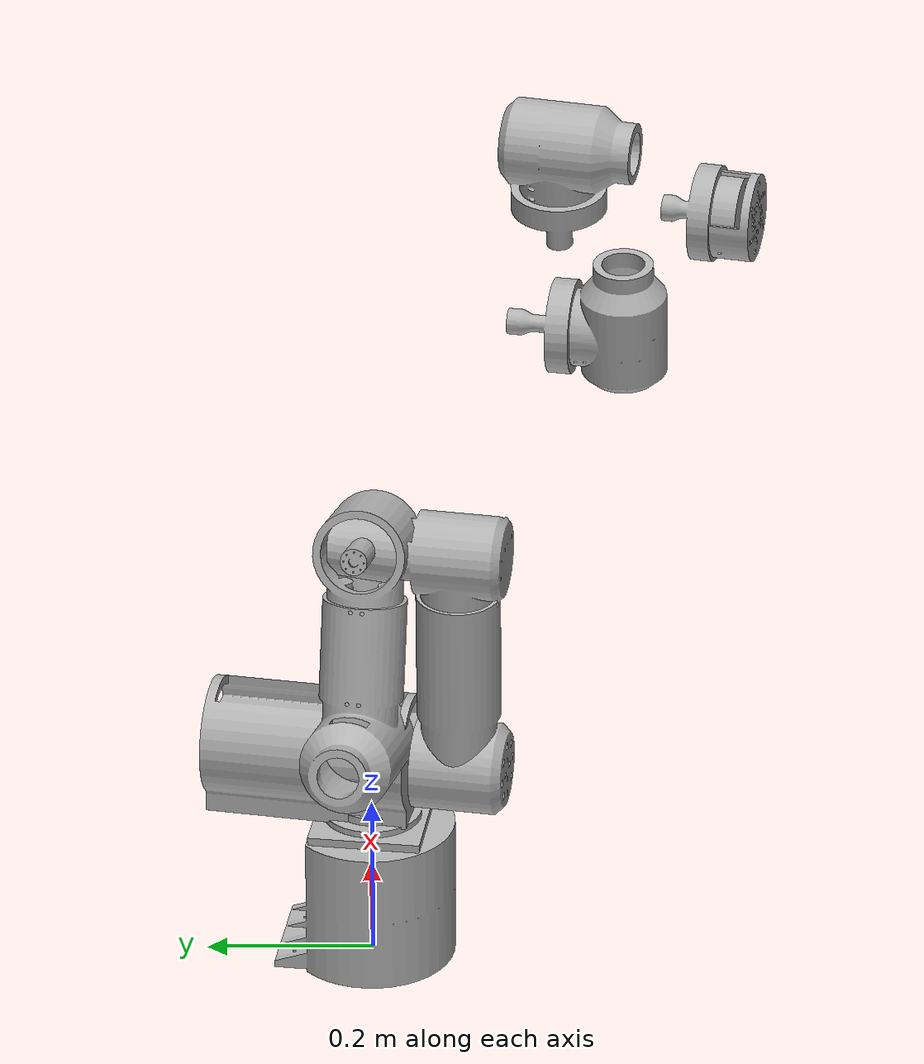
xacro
<?xml version="1.0"?>
<robot xmlns:xacro="http://www.ros.org/wiki/xacro" name="handy_description">

  <!-- Arguments -->
  <xacro:arg name="initial_positions_file" default="$(find handy_config)/config/initial_positions.yaml"/>
  <xacro:arg name="use_sim" default="false"/>

  <!-- Store arg as property for use in macro -->
  <xacro:property name="use_sim_prop" value="$(arg use_sim)"/>

  <xacro:include filename="$(find handy_description)/urdf/handy_description.urdf"/>
  <xacro:include filename="$(find handy_config)/config/handy_description.gazebo.xacro"/>
  <xacro:include filename="$(find handy_config)/config/handy_description.ros2_control.xacro"/>

  <!-- Call macro with use_sim property -->
  <xacro:handy_description_ros2_control
    name="handy_ros2_control"
    use_sim="${use_sim_prop}"
    initial_positions_file="$(arg initial_positions_file)"/>

</robot>

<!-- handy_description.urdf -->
<robot
  name="handy_description">
  <link
    name="base_link">
    <inertial>
      <origin
        xyz="-2.17400550704263E-05 0.0804155851410019 0.0167771821086932"
        rpy="0 0 0" />
      <mass
        value="5.20579669773012" />
      <inertia
        ixx="0.0745298638298292"
        ixy="2.35902206932597E-07"
        ixz="-1.71772773874938E-05"
        iyy="0.121254442926251"
        iyz="-0.000702969799281514"
        izz="0.0908582339067126" />
    </inertial>
    <visual>
      <origin
        xyz="0 0 0"
        rpy="0 0 0" />
      <geometry>
        <mesh
          filename="file://$(find handy_description)/meshes/base_link.STL" />
      </geometry>
      <material
        name="">
        <color
          rgba="0.698039215686274 0.698039215686274 0.698039215686274 1" />
      </material>
    </visual>
    <collision>
      <origin
        xyz="0 0 0"
        rpy="0 0 0" />
      <geometry>
        <mesh
          filename="file://$(find handy_description)/meshes/base_link.STL" />
      </geometry>
    </collision>
  </link>
  <link
    name="Link1">
    <inertial>
      <origin
        xyz="-0.0505963772912258 0.0807845229259251 0.000239884360427188"
        rpy="0 0 0" />
      <mass
        value="1.84719084699337" />
      <inertia
        ixx="0.00589331492713367"
        ixy="-0.000434913621296606"
        ixz="9.41395649699435E-06"
        iyy="0.0165212871966622"
        iyz="-3.68582776875864E-05"
        izz="0.0170282435103473" />
    </inertial>
    <visual>
      <origin
        xyz="0 0 0"
        rpy="0 0 0" />
      <geometry>
        <mesh
          filename="file://$(find handy_description)/meshes/Link1.STL" />
      </geometry>
      <material
        name="">
        <color
          rgba="0.698039215686274 0.698039215686274 0.698039215686274 1" />
      </material>
    </visual>
    <collision>
      <origin
        xyz="0 0 0"
        rpy="0 0 0" />
      <geometry>
        <mesh
          filename="file://$(find handy_description)/meshes/Link1.STL" />
      </geometry>
    </collision>
  </link>
  <joint
    name="joint1"
    type="continuous">
    <origin
      xyz="0 0 0.16499999999999"
      rpy="1.5707963267949 0 -1.78820384774425" />
    <parent
      link="base_link" />
    <child
      link="Link1" />
    <axis
      xyz="0 1 0" />
  </joint>
  <link
    name="Link2">
    <inertial>
      <origin
        xyz="0.0872810786514221 0.171831443377257 0.000442592450654812"
        rpy="0 0 0" />
      <mass
        value="1.79378971577605" />
      <inertia
        ixx="0.0286366097356286"
        ixy="0.00434268252501847"
        ixz="5.82082670946274E-06"
        iyy="0.00630835073077821"
        iyz="-4.22812908192919E-05"
        izz="0.031806258387788" />
    </inertial>
    <visual>
      <origin
        xyz="0 0 0"
        rpy="0 0 0" />
      <geometry>
        <mesh
          filename="file://$(find handy_description)/meshes/Link2.STL" />
      </geometry>
      <material
        name="">
        <color
          rgba="0.698039215686274 0.698039215686274 0.698039215686274 1" />
      </material>
    </visual>
    <collision>
      <origin
        xyz="0 0 0"
        rpy="0 0 0" />
      <geometry>
        <mesh
          filename="file://$(find handy_description)/meshes/Link2.STL" />
      </geometry>
    </collision>
  </link>
  <joint
    name="joint2"
    type="continuous">
    <origin
      xyz="0 0.0980000000000102 0"
      rpy="0.0331729718675605 0 0" />
    <parent
      link="Link1" />
    <child
      link="Link2" />
    <axis
      xyz="1 0 0" />
  </joint>
  <link
    name="Link3">
    <inertial>
      <origin
        xyz="-3.17005538200688E-05 -0.145907433466096 -0.0124227488510887"
        rpy="0 0 0" />
      <mass
        value="1.67831155597823" />
      <inertia
        ixx="0.0287779073274115"
        ixy="1.21179691208291E-07"
        ixz="1.28013844381651E-08"
        iyy="0.00494996442330398"
        iyz="0.00209715919164777"
        izz="0.0272241658004667" />
    </inertial>
    <visual>
      <origin
        xyz="0 0 0"
        rpy="0 0 0" />
      <geometry>
        <mesh
          filename="file://$(find handy_description)/meshes/Link3.STL" />
      </geometry>
      <material
        name="">
        <color
          rgba="0.698039215686274 0.698039215686274 0.698039215686274 1" />
      </material>
    </visual>
    <collision>
      <origin
        xyz="0 0 0"
        rpy="0 0 0" />
      <geometry>
        <mesh
          filename="file://$(find handy_description)/meshes/Link3.STL" />
      </geometry>
    </collision>
  </link>
  <joint
    name="joint3"
    type="continuous">
    <origin
      xyz="0 0.29155 0.000575582702538871"
      rpy="1.5707963267949 -1.32183280290932 1.5707963267949" />
    <parent
      link="Link2" />
    <child
      link="Link3" />
    <axis
      xyz="0 0 1" />
  </joint>
  <link
    name="Link4">
    <inertial>
      <origin
        xyz="9.14813616526011E-09 0.0807632232499863 -0.00464807251136501"
        rpy="0 0 0" />
      <mass
        value="0.788294501444391" />
      <inertia
        ixx="0.00337863003704717"
        ixy="-1.49147045606338E-09"
        ixz="-1.97176665782316E-09"
        iyy="0.00181746118095437"
        iyz="5.59839347246388E-05"
        izz="0.00294855360229455" />
    </inertial>
    <visual>
      <origin
        xyz="0 0 0"
        rpy="0 0 0" />
      <geometry>
        <mesh
          filename="file://$(find handy_description)/meshes/Link4.STL" />
      </geometry>
      <material
        name="">
        <color
          rgba="0.698039215686274 0.698039215686274 0.698039215686274 1" />
      </material>
    </visual>
    <collision>
      <origin
        xyz="0 0 0"
        rpy="0 0 0" />
      <geometry>
        <mesh
          filename="file://$(find handy_description)/meshes/Link4.STL" />
      </geometry>
    </collision>
  </link>
  <joint
    name="joint4"
    type="continuous">
    <origin
      xyz="0 -0.283 0.0937268862500288"
      rpy="1.5707963267949 0 -2.80898508991109" />
    <parent
      link="Link3" />
    <child
      link="Link4" />
    <axis
      xyz="0 1 0" />
  </joint>
  <link
    name="Link5">
    <inertial>
      <origin
        xyz="1.10484036669467E-07 0.0661798360157611 -0.00478961604459155"
        rpy="0 0 0" />
      <mass
        value="0.666997164681847" />
      <inertia
        ixx="0.00230581229513047"
        ixy="-3.03911661041242E-09"
        ixz="-1.3687319132369E-09"
        iyy="0.00163752263816699"
        iyz="2.90871514518967E-05"
        izz="0.00187035546141408" />
    </inertial>
    <visual>
      <origin
        xyz="0 0 0"
        rpy="0 0 0" />
      <geometry>
        <mesh
          filename="file://$(find handy_description)/meshes/Link5.STL" />
      </geometry>
      <material
        name="">
        <color
          rgba="0.698039215686274 0.698039215686274 0.698039215686274 1" />
      </material>
    </visual>
    <collision>
      <origin
        xyz="0 0 0"
        rpy="0 0 0" />
      <geometry>
        <mesh
          filename="file://$(find handy_description)/meshes/Link5.STL" />
      </geometry>
    </collision>
  </link>
  <joint
    name="joint5"
    type="continuous">
    <origin
      xyz="0 0.123067608467674 -0.0836321372682999"
      rpy="-1.5707963267949 0 -3.07906203524659" />
    <parent
      link="Link4" />
    <child
      link="Link5" />
    <axis
      xyz="0 1 0" />
  </joint>
  <link
    name="Link6">
    <inertial>
      <origin
        xyz="1.83414272658666E-08 0.035546421300757 -0.00209003383815964"
        rpy="0 0 0" />
      <mass
        value="0.395089923264463" />
      <inertia
        ixx="0.00060937486897689"
        ixy="-3.32216647271869E-10"
        ixz="-5.97155257723745E-10"
        iyy="0.000602680820617663"
        iyz="-9.08085988624423E-06"
        izz="0.000611095056035486" />
    </inertial>
    <visual>
      <origin
        xyz="0 0 0"
        rpy="0 0 0" />
      <geometry>
        <mesh
          filename="file://$(find handy_description)/meshes/Link6.STL" />
      </geometry>
      <material
        name="">
        <color
          rgba="0.698039215686274 0.698039215686274 0.698039215686274 1" />
      </material>
    </visual>
    <collision>
      <origin
        xyz="0 0 0"
        rpy="0 0 0" />
      <geometry>
        <mesh
          filename="file://$(find handy_description)/meshes/Link6.STL" />
      </geometry>
    </collision>
  </link>
  <joint
    name="joint6"
    type="continuous">
    <origin
      xyz="0 0.0921623574494037 -0.0859488892195215"
      rpy="-1.5707963267949 0 2.60725709980123" />
    <parent
      link="Link5" />
    <child
      link="Link6" />
    <axis
      xyz="0 1 0" />
  </joint>
</robot>
